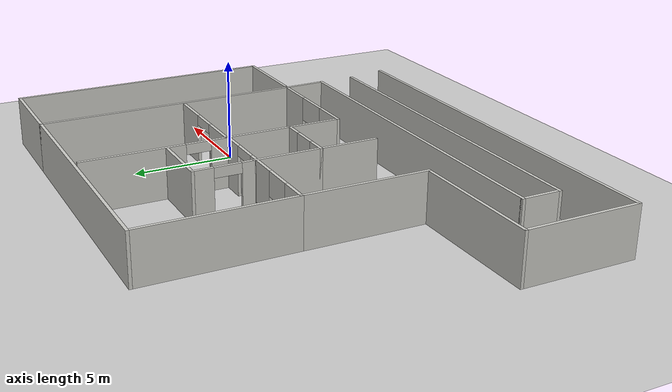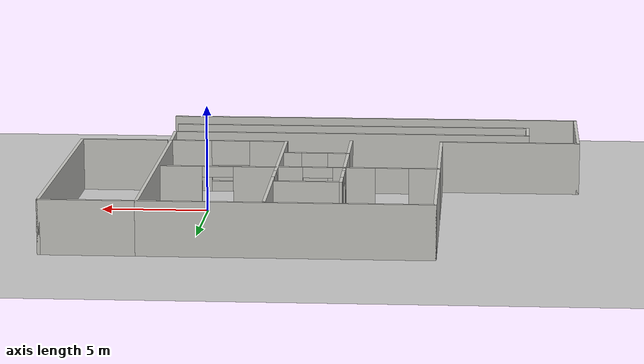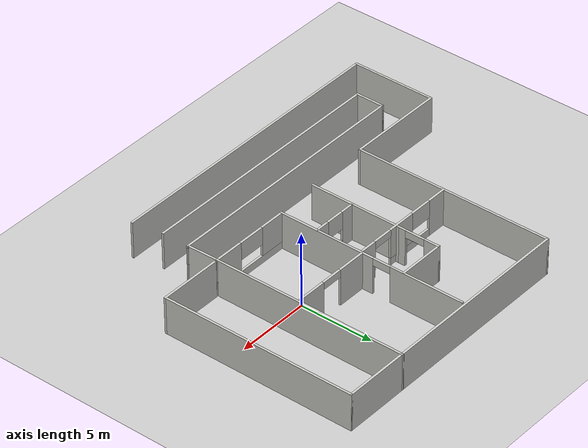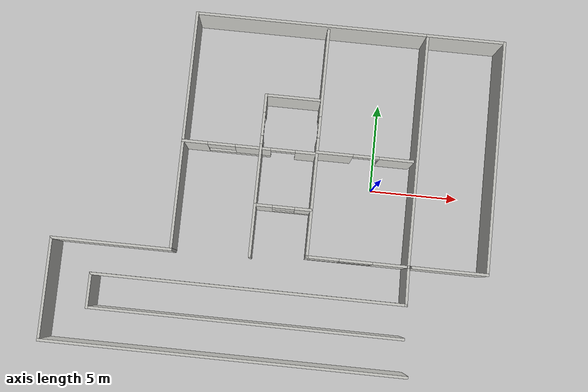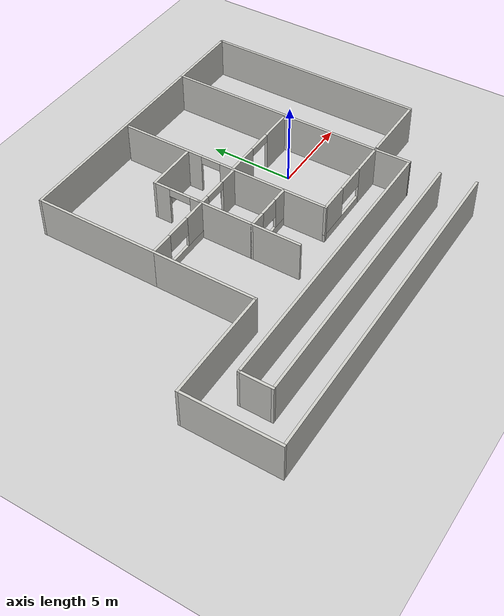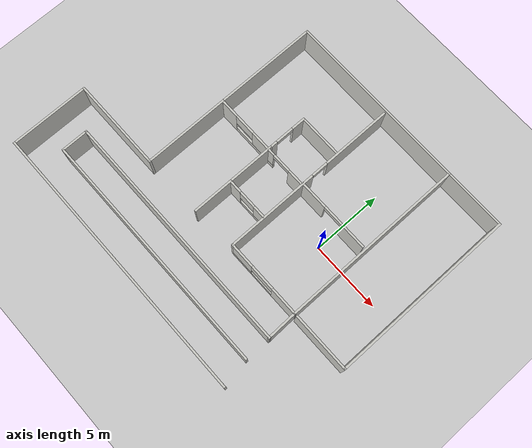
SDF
<sdf version="1.6">
 <world name="default">
  <light name="sun" type="directional">
   <pose>0 0 10 0 -0 0</pose>
   <diffuse>0.8 0.8 0.8 1</diffuse>
   <specular>0.2 0.2 0.2 1</specular>
   <attenuation>
    <range>1000</range>
    <constant>0.9</constant>
    <linear>0.01</linear>
    <quadratic>0.001</quadratic>
   </attenuation>
   <direction>-0.5 0.1 -0.9</direction>
  </light>
  <model name="ground_plane">
   <static>1</static>
   <link name="link">
    <collision name="collision">
     <geometry><plane><normal>0 0 1</normal><size>100 100</size></plane></geometry>
     <surface>
      <contact><collide_bitmask>65535</collide_bitmask></contact>
      <friction><ode><mu>100</mu><mu2>50</mu2></ode></friction>
     </surface>
    </collision>
    <visual name="visual">
     <cast_shadows>0</cast_shadows>
     <geometry><plane><normal>0 0 1</normal><size>100 100</size></plane></geometry>
     <material>
      <script><uri>file://media/materials/scripts/gazebo.material</uri><name>Gazebo/Grey</name></script>
     </material>
    </visual>
   </link>
  </model>
  <gravity>0 0 -9.8</gravity>
  <magnetic_field>6e-06 2.3e-05 -4.2e-05</magnetic_field>
  <atmosphere type="adiabatic"/>
  <physics name="default_physics" default="0" type="ode">
   <max_step_size>0.001</max_step_size>
   <real_time_factor>1</real_time_factor>
   <real_time_update_rate>1000</real_time_update_rate>
  </physics>
  <scene><ambient>0.4 0.4 0.4 1</ambient><background>0.7 0.7 0.7 1</background><shadows>1</shadows></scene>
  <spherical_coordinates>
   <surface_model>EARTH_WGS84</surface_model>
   <latitude_deg>0</latitude_deg>
   <longitude_deg>0</longitude_deg>
   <elevation>0</elevation>
   <heading_deg>0</heading_deg>
  </spherical_coordinates>
  <model name="robot_maze">
   <pose>-5.46792 -0.685575 0 0 -0 0</pose>
   <link name="Wall_0">
    <collision name="Wall_0_Collision">
     <geometry><box><size>13.25 0.15 2.5</size></box></geometry>
     <pose>0 0 1.25 0 -0 0</pose>
    </collision>
    <visual name="Wall_0_Visual">
     <pose>0 0 1.25 0 -0 0</pose>
     <geometry><box><size>13.25 0.15 2.5</size></box></geometry>
     <material>
      <script><uri>file://media/materials/scripts/gazebo.material</uri><name>Gazebo/CeilingTiled</name></script>
      <ambient>1 1 1 1</ambient>
     </material>
     <meta><layer>0</layer></meta>
    </visual>
    <pose>1.125 9.525 0 0 -0 0</pose>
   </link>
   <link name="Wall_1">
    <collision name="Wall_1_Collision">
     <geometry><box><size>13.25 0.15 2.5</size></box></geometry>
     <pose>0 0 1.25 0 -0 0</pose>
    </collision>
    <visual name="Wall_1_Visual">
     <pose>0 0 1.25 0 -0 0</pose>
     <geometry><box><size>13.25 0.15 2.5</size></box></geometry>
     <material>
      <script><uri>file://media/materials/scripts/gazebo.material</uri><name>Gazebo/CeilingTiled</name></script>
      <ambient>1 1 1 1</ambient>
     </material>
     <meta><layer>0</layer></meta>
    </visual>
    <pose>7.675 2.975 0 0 -0 -1.5708</pose>
   </link>
   <link name="Wall_10">
    <collision name="Wall_10_Collision">
     <geometry><box><size>3.25 0.15 2.5</size></box></geometry>
     <pose>0 0 1.25 0 -0 0</pose>
    </collision>
    <visual name="Wall_10_Visual">
     <pose>0 0 1.25 0 -0 0</pose>
     <geometry><box><size>3.25 0.15 2.5</size></box></geometry>
     <material>
      <script><uri>file://media/materials/scripts/gazebo.material</uri><name>Gazebo/CeilingTiled</name></script>
      <ambient>1 1 1 1</ambient>
     </material>
     <meta><layer>0</layer></meta>
    </visual>
    <pose>0.48397 5.20414 0 0 -0 3.14159</pose>
   </link>
   <link name="Wall_11">
    <pose>-1.06603 3.77914 0 0 -0 -1.5708</pose>
    <visual name="Wall_11_Visual_0">
     <pose>-0.970906 0 1.25 0 -0 0</pose>
     <geometry><box><size>1.05819 0.15 2.5</size></box></geometry>
     <material>
      <script><uri>file://media/materials/scripts/gazebo.material</uri><name>Gazebo/CeilingTiled</name></script>
      <ambient>1 1 1 1</ambient>
     </material>
     <meta><layer>0</layer></meta>
    </visual>
    <collision name="Wall_11_Collision_0">
     <geometry><box><size>1.05819 0.15 2.5</size></box></geometry>
     <pose>-0.970906 0 1.25 0 -0 0</pose>
    </collision>
    <visual name="Wall_11_Visual_1">
     <pose>1.1919 0 1.25 0 -0 0</pose>
     <geometry><box><size>0.616208 0.15 2.5</size></box></geometry>
     <material>
      <script><uri>file://media/materials/scripts/gazebo.material</uri><name>Gazebo/CeilingTiled</name></script>
      <ambient>1 1 1 1</ambient>
     </material>
     <meta><layer>0</layer></meta>
    </visual>
    <collision name="Wall_11_Collision_1">
     <geometry><box><size>0.616208 0.15 2.5</size></box></geometry>
     <pose>1.1919 0 1.25 0 -0 0</pose>
    </collision>
    <visual name="Wall_11_Visual_2">
     <pose>0.22099 0 2.25 0 -0 0</pose>
     <geometry><box><size>1.3256 0.15 0.5</size></box></geometry>
     <material>
      <script><uri>file://media/materials/scripts/gazebo.material</uri><name>Gazebo/CeilingTiled</name></script>
      <ambient>1 1 1 1</ambient>
     </material>
     <meta><layer>0</layer></meta>
    </visual>
    <collision name="Wall_11_Collision_2">
     <geometry><box><size>1.3256 0.15 0.5</size></box></geometry>
     <pose>0.22099 0 2.25 0 -0 0</pose>
    </collision>
   </link>
   <link name="Wall_13">
    <collision name="Wall_13_Collision">
     <geometry><box><size>3.5 0.15 2.5</size></box></geometry>
     <pose>0 0 1.25 0 -0 0</pose>
    </collision>
    <visual name="Wall_13_Visual">
     <pose>0 0 1.25 0 -0 0</pose>
     <geometry><box><size>3.5 0.15 2.5</size></box></geometry>
     <material>
      <script><uri>file://media/materials/scripts/gazebo.material</uri><name>Gazebo/CeilingTiled</name></script>
      <ambient>1 1 1 1</ambient>
     </material>
     <meta><layer>0</layer></meta>
    </visual>
    <pose>-1.06603 0.679142 0 0 -0 -1.5708</pose>
   </link>
   <link name="Wall_14">
    <pose>0.48397 -0.995858 0 0 -0 0</pose>
    <visual name="Wall_14_Visual_0">
     <pose>-1.10695 0 1.25 0 -0 0</pose>
     <geometry><box><size>1.03611 0.15 2.5</size></box></geometry>
     <material>
      <script><uri>file://media/materials/scripts/gazebo.material</uri><name>Gazebo/CeilingTiled</name></script>
      <ambient>1 1 1 1</ambient>
     </material>
     <meta><layer>0</layer></meta>
    </visual>
    <collision name="Wall_14_Collision_0">
     <geometry><box><size>1.03611 0.15 2.5</size></box></geometry>
     <pose>-1.10695 0 1.25 0 -0 0</pose>
    </collision>
    <visual name="Wall_14_Visual_1">
     <pose>0.518053 0 0.25 0 -0 0</pose>
     <geometry><box><size>2.21389 0.15 0.5</size></box></geometry>
     <material>
      <script><uri>file://media/materials/scripts/gazebo.material</uri><name>Gazebo/CeilingTiled</name></script>
      <ambient>1 1 1 1</ambient>
     </material>
     <meta><layer>0</layer></meta>
    </visual>
    <collision name="Wall_14_Collision_1">
     <geometry><box><size>2.21389 0.15 0.5</size></box></geometry>
     <pose>0.518053 0 0.25 0 -0 0</pose>
    </collision>
    <visual name="Wall_14_Visual_2">
     <pose>1.14416 0 1.5 0 -0 0</pose>
     <geometry><box><size>0.961691 0.15 2</size></box></geometry>
     <material>
      <script><uri>file://media/materials/scripts/gazebo.material</uri><name>Gazebo/CeilingTiled</name></script>
      <ambient>1 1 1 1</ambient>
     </material>
     <meta><layer>0</layer></meta>
    </visual>
    <collision name="Wall_14_Collision_2">
     <geometry><box><size>0.961691 0.15 2</size></box></geometry>
     <pose>1.14416 0 1.5 0 -0 0</pose>
    </collision>
    <visual name="Wall_14_Visual_3">
     <pose>0.037208 0 1.9 0 -0 0</pose>
     <geometry><box><size>1.2522 0.15 1.2</size></box></geometry>
     <material>
      <script><uri>file://media/materials/scripts/gazebo.material</uri><name>Gazebo/CeilingTiled</name></script>
      <ambient>1 1 1 1</ambient>
     </material>
     <meta><layer>0</layer></meta>
    </visual>
    <collision name="Wall_14_Collision_3">
     <geometry><box><size>1.2522 0.15 1.2</size></box></geometry>
     <pose>0.037208 0 1.9 0 -0 0</pose>
    </collision>
   </link>
   <link name="Wall_16">
    <collision name="Wall_16_Collision">
     <geometry><box><size>6.25 0.15 2.5</size></box></geometry>
     <pose>0 0 1.25 0 -0 0</pose>
    </collision>
    <visual name="Wall_16_Visual">
     <pose>0 0 1.25 0 -0 0</pose>
     <geometry><box><size>6.25 0.15 2.5</size></box></geometry>
     <material>
      <script><uri>file://media/materials/scripts/gazebo.material</uri><name>Gazebo/CeilingTiled</name></script>
      <ambient>1 1 1 1</ambient>
     </material>
     <meta><layer>0</layer></meta>
    </visual>
    <pose>-5.425 -0.875 0 0 -0 -1.5708</pose>
   </link>
   <link name="Wall_17">
    <collision name="Wall_17_Collision">
     <geometry><box><size>6.75 0.15 2.5</size></box></geometry>
     <pose>0 0 1.25 0 -0 0</pose>
    </collision>
    <visual name="Wall_17_Visual">
     <pose>0 0 1.25 0 -0 0</pose>
     <geometry><box><size>6.75 0.15 2.5</size></box></geometry>
     <material>
      <script><uri>file://media/materials/scripts/gazebo.material</uri><name>Gazebo/CeilingTiled</name></script>
      <ambient>1 1 1 1</ambient>
     </material>
     <meta><layer>0</layer></meta>
    </visual>
    <pose>-8.725 -3.925 0 0 -0 3.14159</pose>
   </link>
   <link name="Wall_18">
    <collision name="Wall_18_Collision">
     <geometry><box><size>5.75 0.15 2.5</size></box></geometry>
     <pose>0 0 1.25 0 -0 0</pose>
    </collision>
    <visual name="Wall_18_Visual">
     <pose>0 0 1.25 0 -0 0</pose>
     <geometry><box><size>5.75 0.15 2.5</size></box></geometry>
     <material>
      <script><uri>file://media/materials/scripts/gazebo.material</uri><name>Gazebo/CeilingTiled</name></script>
      <ambient>1 1 1 1</ambient>
     </material>
     <meta><layer>0</layer></meta>
    </visual>
    <pose>-12.025 -6.725 0 0 -0 -1.5708</pose>
   </link>
   <link name="Wall_19">
    <collision name="Wall_19_Collision">
     <geometry><box><size>20.25 0.15 2.5</size></box></geometry>
     <pose>0 0 1.25 0 -0 0</pose>
    </collision>
    <visual name="Wall_19_Visual">
     <pose>0 0 1.25 0 -0 0</pose>
     <geometry><box><size>20.25 0.15 2.5</size></box></geometry>
     <material>
      <script><uri>file://media/materials/scripts/gazebo.material</uri><name>Gazebo/CeilingTiled</name></script>
      <ambient>1 1 1 1</ambient>
     </material>
     <meta><layer>0</layer></meta>
    </visual>
    <pose>-1.975 -9.525 0 0 -0 0</pose>
   </link>
   <link name="Wall_2">
    <pose>4.875 -3.575 0 0 -0 3.14159</pose>
    <visual name="Wall_2_Visual_0">
     <pose>-1.84796 0 1.25 0 -0 0</pose>
     <geometry><box><size>2.05409 0.15 2.5</size></box></geometry>
     <material>
      <script><uri>file://media/materials/scripts/gazebo.material</uri><name>Gazebo/CeilingTiled</name></script>
      <ambient>1 1 1 1</ambient>
     </material>
     <meta><layer>0</layer></meta>
    </visual>
    <collision name="Wall_2_Collision_0">
     <geometry><box><size>2.05409 0.15 2.5</size></box></geometry>
     <pose>-1.84796 0 1.25 0 -0 0</pose>
    </collision>
    <visual name="Wall_2_Visual_1">
     <pose>1.02704 0 0.25 0 -0 0</pose>
     <geometry><box><size>3.69591 0.15 0.5</size></box></geometry>
     <material>
      <script><uri>file://media/materials/scripts/gazebo.material</uri><name>Gazebo/CeilingTiled</name></script>
      <ambient>1 1 1 1</ambient>
     </material>
     <meta><layer>0</layer></meta>
    </visual>
    <collision name="Wall_2_Collision_1">
     <geometry><box><size>3.69591 0.15 0.5</size></box></geometry>
     <pose>1.02704 0 0.25 0 -0 0</pose>
    </collision>
    <visual name="Wall_2_Visual_2">
     <pose>1.94575 0 1.5 0 -0 0</pose>
     <geometry><box><size>1.85851 0.15 2</size></box></geometry>
     <material>
      <script><uri>file://media/materials/scripts/gazebo.material</uri><name>Gazebo/CeilingTiled</name></script>
      <ambient>1 1 1 1</ambient>
     </material>
     <meta><layer>0</layer></meta>
    </visual>
    <collision name="Wall_2_Collision_2">
     <geometry><box><size>1.85851 0.15 2</size></box></geometry>
     <pose>1.94575 0 1.5 0 -0 0</pose>
    </collision>
    <visual name="Wall_2_Visual_3">
     <pose>0.09779 0 1.9 0 -0 0</pose>
     <geometry><box><size>1.83741 0.15 1.2</size></box></geometry>
     <material>
      <script><uri>file://media/materials/scripts/gazebo.material</uri><name>Gazebo/CeilingTiled</name></script>
      <ambient>1 1 1 1</ambient>
     </material>
     <meta><layer>0</layer></meta>
    </visual>
    <collision name="Wall_2_Collision_3">
     <geometry><box><size>1.83741 0.15 1.2</size></box></geometry>
     <pose>0.09779 0 1.9 0 -0 0</pose>
    </collision>
   </link>
   <link name="Wall_21">
    <collision name="Wall_21_Collision">
     <geometry><box><size>17.5 0.15 2.5</size></box></geometry>
     <pose>0 0 1.25 0 -0 0</pose>
    </collision>
    <visual name="Wall_21_Visual">
     <pose>0 0 1.25 0 -0 0</pose>
     <geometry><box><size>17.5 0.15 2.5</size></box></geometry>
     <material>
      <script><uri>file://media/materials/scripts/gazebo.material</uri><name>Gazebo/CeilingTiled</name></script>
      <ambient>1 1 1 1</ambient>
     </material>
     <meta><layer>0</layer></meta>
    </visual>
    <pose>-0.949174 -7.51384 0 0 -0 3.14159</pose>
   </link>
   <link name="Wall_22">
    <collision name="Wall_22_Collision">
     <geometry><box><size>2 0.15 2.5</size></box></geometry>
     <pose>0 0 1.25 0 -0 0</pose>
    </collision>
    <visual name="Wall_22_Visual">
     <pose>0 0 1.25 0 -0 0</pose>
     <geometry><box><size>2 0.15 2.5</size></box></geometry>
     <material>
      <script><uri>file://media/materials/scripts/gazebo.material</uri><name>Gazebo/CeilingTiled</name></script>
      <ambient>1 1 1 1</ambient>
     </material>
     <meta><layer>0</layer></meta>
    </visual>
    <pose>-9.62417 -6.58884 0 0 -0 1.5708</pose>
   </link>
   <link name="Wall_25">
    <collision name="Wall_25_Collision">
     <geometry><box><size>17.5 0.15 2.5</size></box></geometry>
     <pose>0 0 1.25 0 -0 0</pose>
    </collision>
    <visual name="Wall_25_Visual">
     <pose>0 0 1.25 0 -0 0</pose>
     <geometry><box><size>17.5 0.15 2.5</size></box></geometry>
     <material>
      <script><uri>file://media/materials/scripts/gazebo.material</uri><name>Gazebo/CeilingTiled</name></script>
      <ambient>1 1 1 1</ambient>
     </material>
     <meta><layer>0</layer></meta>
    </visual>
    <pose>-0.949174 -5.66384 0 0 -0 0</pose>
   </link>
   <link name="Wall_26">
    <collision name="Wall_26_Collision">
     <geometry><box><size>2.23945 0.15 2.5</size></box></geometry>
     <pose>0 0 1.25 0 -0 0</pose>
    </collision>
    <visual name="Wall_26_Visual">
     <pose>0 0 1.25 0 -0 0</pose>
     <geometry><box><size>2.23945 0.15 2.5</size></box></geometry>
     <material>
      <script><uri>file://media/materials/scripts/gazebo.material</uri><name>Gazebo/CeilingTiled</name></script>
      <ambient>1 1 1 1</ambient>
     </material>
     <meta><layer>0</layer></meta>
    </visual>
    <pose>7.70041 -4.61942 0 0 -0 1.59512</pose>
   </link>
   <link name="Wall_28">
    <collision name="Wall_28_Collision">
     <geometry><box><size>3 0.15 2.5</size></box></geometry>
     <pose>0 0 1.25 0 -0 0</pose>
    </collision>
    <visual name="Wall_28_Visual">
     <pose>0 0 1.25 0 -0 0</pose>
     <geometry><box><size>3 0.15 2.5</size></box></geometry>
     <material>
      <script><uri>file://media/materials/scripts/gazebo.material</uri><name>Gazebo/CeilingTiled</name></script>
      <ambient>1 1 1 1</ambient>
     </material>
     <meta><layer>0</layer></meta>
    </visual>
    <pose>-1.06603 -2.42086 0 0 -0 -1.5708</pose>
   </link>
   <link name="Wall_3">
    <pose>2.075 2.85 0 0 -0 1.5708</pose>
    <visual name="Wall_3_Visual_0">
     <pose>-3.14087 0 1.25 0 -0 0</pose>
     <geometry><box><size>6.71825 0.15 2.5</size></box></geometry>
     <material>
      <script><uri>file://media/materials/scripts/gazebo.material</uri><name>Gazebo/CeilingTiled</name></script>
      <ambient>1 1 1 1</ambient>
     </material>
     <meta><layer>0</layer></meta>
    </visual>
    <collision name="Wall_3_Collision_0">
     <geometry><box><size>6.71825 0.15 2.5</size></box></geometry>
     <pose>-3.14087 0 1.25 0 -0 0</pose>
    </collision>
    <visual name="Wall_3_Visual_1">
     <pose>3.96873 0 1.25 0 -0 0</pose>
     <geometry><box><size>5.06255 0.15 2.5</size></box></geometry>
     <material>
      <script><uri>file://media/materials/scripts/gazebo.material</uri><name>Gazebo/CeilingTiled</name></script>
      <ambient>1 1 1 1</ambient>
     </material>
     <meta><layer>0</layer></meta>
    </visual>
    <collision name="Wall_3_Collision_1">
     <geometry><box><size>5.06255 0.15 2.5</size></box></geometry>
     <pose>3.96873 0 1.25 0 -0 0</pose>
    </collision>
    <visual name="Wall_3_Visual_2">
     <pose>0.827853 0 2.25 0 -0 0</pose>
     <geometry><box><size>1.2192 0.15 0.5</size></box></geometry>
     <material>
      <script><uri>file://media/materials/scripts/gazebo.material</uri><name>Gazebo/CeilingTiled</name></script>
      <ambient>1 1 1 1</ambient>
     </material>
     <meta><layer>0</layer></meta>
    </visual>
    <collision name="Wall_3_Collision_2">
     <geometry><box><size>1.2192 0.15 0.5</size></box></geometry>
     <pose>0.827853 0 2.25 0 -0 0</pose>
    </collision>
   </link>
   <link name="Wall_30">
    <collision name="Wall_30_Collision">
     <geometry><box><size>4.5 0.15 2.5</size></box></geometry>
     <pose>0 0 1.25 0 -0 0</pose>
    </collision>
    <visual name="Wall_30_Visual">
     <pose>0 0 1.25 0 -0 0</pose>
     <geometry><box><size>4.5 0.15 2.5</size></box></geometry>
     <material>
      <script><uri>file://media/materials/scripts/gazebo.material</uri><name>Gazebo/CeilingTiled</name></script>
      <ambient>1 1 1 1</ambient>
     </material>
     <meta><layer>0</layer></meta>
    </visual>
    <pose>9.85 9.525 0 0 -0 0</pose>
   </link>
   <link name="Wall_31">
    <collision name="Wall_31_Collision">
     <geometry><box><size>13.25 0.15 2.5</size></box></geometry>
     <pose>0 0 1.25 0 -0 0</pose>
    </collision>
    <visual name="Wall_31_Visual">
     <pose>0 0 1.25 0 -0 0</pose>
     <geometry><box><size>13.25 0.15 2.5</size></box></geometry>
     <material>
      <script><uri>file://media/materials/scripts/gazebo.material</uri><name>Gazebo/CeilingTiled</name></script>
      <ambient>1 1 1 1</ambient>
     </material>
     <meta><layer>0</layer></meta>
    </visual>
    <pose>12.025 2.975 0 0 -0 -1.5708</pose>
   </link>
   <link name="Wall_32">
    <collision name="Wall_32_Collision">
     <geometry><box><size>4.25 0.15 2.5</size></box></geometry>
     <pose>0 0 1.25 0 -0 0</pose>
    </collision>
    <visual name="Wall_32_Visual">
     <pose>0 0 1.25 0 -0 0</pose>
     <geometry><box><size>4.25 0.15 2.5</size></box></geometry>
     <material>
      <script><uri>file://media/materials/scripts/gazebo.material</uri><name>Gazebo/CeilingTiled</name></script>
      <ambient>1 1 1 1</ambient>
     </material>
     <meta><layer>0</layer></meta>
    </visual>
    <pose>9.975 -3.575 0 0 -0 3.14159</pose>
   </link>
   <link name="Wall_5">
    <pose>4.7546 2.27178 0 0 -0 0</pose>
    <visual name="Wall_5_Visual_0">
     <pose>-1.7084 0 1.25 0 -0 0</pose>
     <geometry><box><size>2.08321 0.15 2.5</size></box></geometry>
     <material>
      <script><uri>file://media/materials/scripts/gazebo.material</uri><name>Gazebo/CeilingTiled</name></script>
      <ambient>1 1 1 1</ambient>
     </material>
     <meta><layer>0</layer></meta>
    </visual>
    <collision name="Wall_5_Collision_0">
     <geometry><box><size>2.08321 0.15 2.5</size></box></geometry>
     <pose>-1.7084 0 1.25 0 -0 0</pose>
    </collision>
    <visual name="Wall_5_Visual_1">
     <pose>1.7709 0 1.25 0 -0 0</pose>
     <geometry><box><size>1.95819 0.15 2.5</size></box></geometry>
     <material>
      <script><uri>file://media/materials/scripts/gazebo.material</uri><name>Gazebo/CeilingTiled</name></script>
      <ambient>1 1 1 1</ambient>
     </material>
     <meta><layer>0</layer></meta>
    </visual>
    <collision name="Wall_5_Collision_1">
     <geometry><box><size>1.95819 0.15 2.5</size></box></geometry>
     <pose>1.7709 0 1.25 0 -0 0</pose>
    </collision>
    <visual name="Wall_5_Visual_2">
     <pose>0.062508 0 2.25 0 -0 0</pose>
     <geometry><box><size>1.4586 0.15 0.5</size></box></geometry>
     <material>
      <script><uri>file://media/materials/scripts/gazebo.material</uri><name>Gazebo/CeilingTiled</name></script>
      <ambient>1 1 1 1</ambient>
     </material>
     <meta><layer>0</layer></meta>
    </visual>
    <collision name="Wall_5_Collision_2">
     <geometry><box><size>1.4586 0.15 0.5</size></box></geometry>
     <pose>0.062508 0 2.25 0 -0 0</pose>
    </collision>
   </link>
   <link name="Wall_7">
    <collision name="Wall_7_Collision">
     <geometry><box><size>7.5 0.15 2.5</size></box></geometry>
     <pose>0 0 1.25 0 -0 0</pose>
    </collision>
    <visual name="Wall_7_Visual">
     <pose>0 0 1.25 0 -0 0</pose>
     <geometry><box><size>7.5 0.15 2.5</size></box></geometry>
     <material>
      <script><uri>file://media/materials/scripts/gazebo.material</uri><name>Gazebo/CeilingTiled</name></script>
      <ambient>1 1 1 1</ambient>
     </material>
     <meta><layer>0</layer></meta>
    </visual>
    <pose>-5.425 5.85 0 0 -0 -1.5708</pose>
   </link>
   <link name="Wall_8">
    <pose>-1.75 2.175 0 0 -0 0</pose>
    <visual name="Wall_8_Visual_0">
     <pose>-3.02088 0 1.25 0 -0 0</pose>
     <geometry><box><size>1.45825 0.15 2.5</size></box></geometry>
     <material>
      <script><uri>file://media/materials/scripts/gazebo.material</uri><name>Gazebo/CeilingTiled</name></script>
      <ambient>1 1 1 1</ambient>
     </material>
     <meta><layer>0</layer></meta>
    </visual>
    <collision name="Wall_8_Collision_0">
     <geometry><box><size>1.45825 0.15 2.5</size></box></geometry>
     <pose>-3.02088 0 1.25 0 -0 0</pose>
    </collision>
    <visual name="Wall_8_Visual_1">
     <pose>3.18239 0 1.25 0 -0 0</pose>
     <geometry><box><size>1.13522 0.15 2.5</size></box></geometry>
     <material>
      <script><uri>file://media/materials/scripts/gazebo.material</uri><name>Gazebo/CeilingTiled</name></script>
      <ambient>1 1 1 1</ambient>
     </material>
     <meta><layer>0</layer></meta>
    </visual>
    <collision name="Wall_8_Collision_1">
     <geometry><box><size>1.13522 0.15 2.5</size></box></geometry>
     <pose>3.18239 0 1.25 0 -0 0</pose>
    </collision>
    <visual name="Wall_8_Visual_2">
     <pose>-0.52789 0 0.25 0 -0 0</pose>
     <geometry><box><size>3.52773 0.15 0.5</size></box></geometry>
     <material>
      <script><uri>file://media/materials/scripts/gazebo.material</uri><name>Gazebo/CeilingTiled</name></script>
      <ambient>1 1 1 1</ambient>
     </material>
     <meta><layer>0</layer></meta>
    </visual>
    <collision name="Wall_8_Collision_2">
     <geometry><box><size>3.52773 0.15 0.5</size></box></geometry>
     <pose>-0.52789 0 0.25 0 -0 0</pose>
    </collision>
    <visual name="Wall_8_Visual_3">
     <pose>0.244513 0 1.5 0 -0 0</pose>
     <geometry><box><size>1.98292 0.15 2</size></box></geometry>
     <material>
      <script><uri>file://media/materials/scripts/gazebo.material</uri><name>Gazebo/CeilingTiled</name></script>
      <ambient>1 1 1 1</ambient>
     </material>
     <meta><layer>0</layer></meta>
    </visual>
    <collision name="Wall_8_Collision_3">
     <geometry><box><size>1.98292 0.15 2</size></box></geometry>
     <pose>0.244513 0 1.5 0 -0 0</pose>
    </collision>
    <visual name="Wall_8_Visual_4">
     <pose>-1.51935 0 1.9 0 -0 0</pose>
     <geometry><box><size>1.54481 0.15 1.2</size></box></geometry>
     <material>
      <script><uri>file://media/materials/scripts/gazebo.material</uri><name>Gazebo/CeilingTiled</name></script>
      <ambient>1 1 1 1</ambient>
     </material>
     <meta><layer>0</layer></meta>
    </visual>
    <collision name="Wall_8_Collision_4">
     <geometry><box><size>1.54481 0.15 1.2</size></box></geometry>
     <pose>-1.51935 0 1.9 0 -0 0</pose>
    </collision>
    <visual name="Wall_8_Visual_5">
     <pose>1.92538 0 2.25 0 -0 0</pose>
     <geometry><box><size>1.3788 0.15 0.5</size></box></geometry>
     <material>
      <script><uri>file://media/materials/scripts/gazebo.material</uri><name>Gazebo/CeilingTiled</name></script>
      <ambient>1 1 1 1</ambient>
     </material>
     <meta><layer>0</layer></meta>
    </visual>
    <collision name="Wall_8_Collision_5">
     <geometry><box><size>1.3788 0.15 0.5</size></box></geometry>
     <pose>1.92538 0 2.25 0 -0 0</pose>
    </collision>
   </link>
   <static>1</static>
  </model>
 </world>
</sdf>
